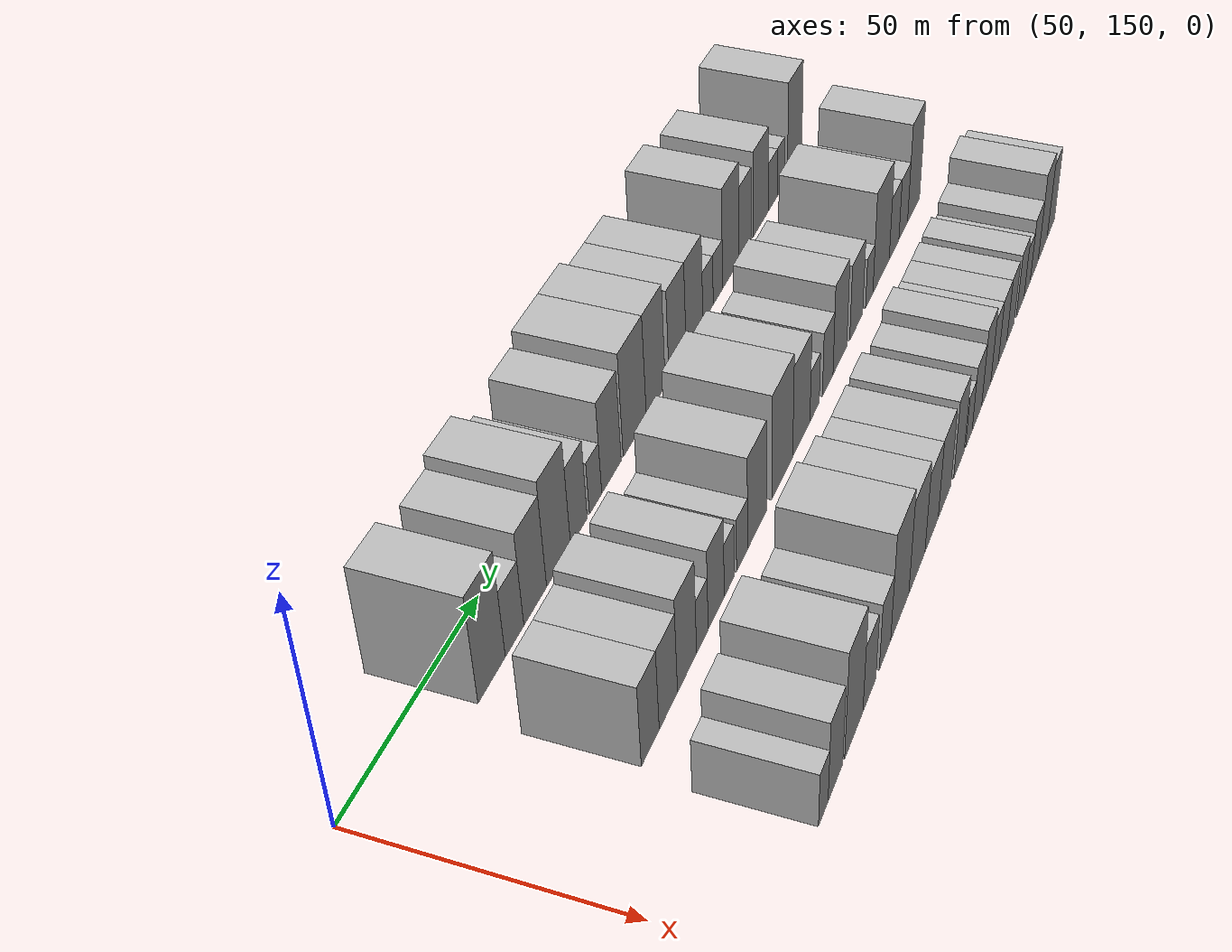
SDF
<sdf version="1.6">
 <world name="default">
  <model name="building_59">
   <static>1</static>
   <pose>50.0000 183.8824 0 0.000000 0.000000 0.000000</pose>
   <link name="link">
    <pose>0 0 12.00 0 0 0</pose>
    <collision name="collision"><geometry><box><size>20.0000 10.3630 24.0000</size></box></geometry></collision>
    <visual name="visual">
     <cast_shadows>0</cast_shadows>
     <geometry><box><size>20.0000 10.3630 24.0000</size></box></geometry>
     <material>
      <script>
       <uri>model://HANNAS_wall/materials/scripts</uri>
       <uri>model://HANNAS_wall/materials/textures</uri>
       <name>vrc/HANNAS_wall</name>
      </script>
     </material>
    </visual>
   </link>
  </model>
  <model name="building_60">
   <static>1</static>
   <pose>50.0000 192.7073 0 0.000000 0.000000 0.000000</pose>
   <link name="link">
    <pose>0 0 7.50 0 0 0</pose>
    <collision name="collision"><geometry><box><size>20.0000 7.2868 15.0000</size></box></geometry></collision>
    <visual name="visual">
     <cast_shadows>0</cast_shadows>
     <geometry><box><size>20.0000 7.2868 15.0000</size></box></geometry>
     <material>
      <script>
       <uri>model://HANNAS_wall/materials/scripts</uri>
       <uri>model://HANNAS_wall/materials/textures</uri>
       <name>vrc/HANNAS_wall</name>
      </script>
     </material>
    </visual>
   </link>
  </model>
  <model name="building_61">
   <static>1</static>
   <pose>50.0000 200.9932 0 0.000000 0.000000 0.000000</pose>
   <link name="link">
    <pose>0 0 10.50 0 0 0</pose>
    <collision name="collision"><geometry><box><size>20.0000 9.2849 21.0000</size></box></geometry></collision>
    <visual name="visual">
     <cast_shadows>0</cast_shadows>
     <geometry><box><size>20.0000 9.2849 21.0000</size></box></geometry>
     <material>
      <script>
       <uri>model://HANNAS_wall/materials/scripts</uri>
       <uri>model://HANNAS_wall/materials/textures</uri>
       <name>vrc/HANNAS_wall</name>
      </script>
     </material>
    </visual>
   </link>
  </model>
  <model name="building_62">
   <static>1</static>
   <pose>50.0000 210.7724 0 0.000000 0.000000 0.000000</pose>
   <link name="link">
    <pose>0 0 12.00 0 0 0</pose>
    <collision name="collision"><geometry><box><size>20.0000 10.2734 24.0000</size></box></geometry></collision>
    <visual name="visual">
     <cast_shadows>0</cast_shadows>
     <geometry><box><size>20.0000 10.2734 24.0000</size></box></geometry>
     <material>
      <script>
       <uri>model://HANNAS_wall/materials/scripts</uri>
       <uri>model://HANNAS_wall/materials/textures</uri>
       <name>vrc/HANNAS_wall</name>
      </script>
     </material>
    </visual>
   </link>
  </model>
  <model name="building_63">
   <static>1</static>
   <pose>50.0000 219.5845 0 0.000000 0.000000 0.000000</pose>
   <link name="link">
    <pose>0 0 9.00 0 0 0</pose>
    <collision name="collision"><geometry><box><size>20.0000 7.3509 18.0000</size></box></geometry></collision>
    <visual name="visual">
     <cast_shadows>0</cast_shadows>
     <geometry><box><size>20.0000 7.3509 18.0000</size></box></geometry>
     <material>
      <script>
       <uri>model://HANNAS_wall/materials/scripts</uri>
       <uri>model://HANNAS_wall/materials/textures</uri>
       <name>vrc/HANNAS_wall</name>
      </script>
     </material>
    </visual>
   </link>
  </model>
  <model name="building_64">
   <static>1</static>
   <pose>50.0000 227.0646 0 0.000000 0.000000 0.000000</pose>
   <link name="link">
    <pose>0 0 6.00 0 0 0</pose>
    <collision name="collision"><geometry><box><size>20.0000 5.6093 12.0000</size></box></geometry></collision>
    <visual name="visual">
     <cast_shadows>0</cast_shadows>
     <geometry><box><size>20.0000 5.6093 12.0000</size></box></geometry>
     <material>
      <script>
       <uri>model://HANNAS_wall/materials/scripts</uri>
       <uri>model://HANNAS_wall/materials/textures</uri>
       <name>vrc/HANNAS_wall</name>
      </script>
     </material>
    </visual>
   </link>
  </model>
  <model name="building_65">
   <static>1</static>
   <pose>50.0000 234.4562 0 0.000000 0.000000 0.000000</pose>
   <link name="link">
    <pose>0 0 10.50 0 0 0</pose>
    <collision name="collision"><geometry><box><size>20.0000 9.1740 21.0000</size></box></geometry></collision>
    <visual name="visual">
     <cast_shadows>0</cast_shadows>
     <geometry><box><size>20.0000 9.1740 21.0000</size></box></geometry>
     <material>
      <script>
       <uri>model://HANNAS_wall/materials/scripts</uri>
       <uri>model://HANNAS_wall/materials/textures</uri>
       <name>vrc/HANNAS_wall</name>
      </script>
     </material>
    </visual>
   </link>
  </model>
  <model name="building_66">
   <static>1</static>
   <pose>50.0000 245.7895 0 0.000000 0.000000 0.000000</pose>
   <link name="link">
    <pose>0 0 12.00 0 0 0</pose>
    <collision name="collision"><geometry><box><size>20.0000 11.4926 24.0000</size></box></geometry></collision>
    <visual name="visual">
     <cast_shadows>0</cast_shadows>
     <geometry><box><size>20.0000 11.4926 24.0000</size></box></geometry>
     <material>
      <script>
       <uri>model://HANNAS_wall/materials/scripts</uri>
       <uri>model://HANNAS_wall/materials/textures</uri>
       <name>vrc/HANNAS_wall</name>
      </script>
     </material>
    </visual>
   </link>
  </model>
  <model name="building_67">
   <static>1</static>
   <pose>50.0000 256.4288 0 0.000000 0.000000 0.000000</pose>
   <link name="link">
    <pose>0 0 12.00 0 0 0</pose>
    <collision name="collision"><geometry><box><size>20.0000 9.7861 24.0000</size></box></geometry></collision>
    <visual name="visual">
     <cast_shadows>0</cast_shadows>
     <geometry><box><size>20.0000 9.7861 24.0000</size></box></geometry>
     <material>
      <script>
       <uri>model://HANNAS_wall/materials/scripts</uri>
       <uri>model://HANNAS_wall/materials/textures</uri>
       <name>vrc/HANNAS_wall</name>
      </script>
     </material>
    </visual>
   </link>
  </model>
  <model name="building_68">
   <static>1</static>
   <pose>50.0000 267.9615 0 0.000000 0.000000 0.000000</pose>
   <link name="link">
    <pose>0 0 10.50 0 0 0</pose>
    <collision name="collision"><geometry><box><size>20.0000 9.2793 21.0000</size></box></geometry></collision>
    <visual name="visual">
     <cast_shadows>0</cast_shadows>
     <geometry><box><size>20.0000 9.2793 21.0000</size></box></geometry>
     <material>
      <script>
       <uri>model://HANNAS_wall/materials/scripts</uri>
       <uri>model://HANNAS_wall/materials/textures</uri>
       <name>vrc/HANNAS_wall</name>
      </script>
     </material>
    </visual>
   </link>
  </model>
  <model name="building_69">
   <static>1</static>
   <pose>50.0000 277.3104 0 0.000000 0.000000 0.000000</pose>
   <link name="link">
    <pose>0 0 10.50 0 0 0</pose>
    <collision name="collision"><geometry><box><size>20.0000 9.4185 21.0000</size></box></geometry></collision>
    <visual name="visual">
     <cast_shadows>0</cast_shadows>
     <geometry><box><size>20.0000 9.4185 21.0000</size></box></geometry>
     <material>
      <script>
       <uri>model://HANNAS_wall/materials/scripts</uri>
       <uri>model://HANNAS_wall/materials/textures</uri>
       <name>vrc/HANNAS_wall</name>
      </script>
     </material>
    </visual>
   </link>
  </model>
  <model name="building_70">
   <static>1</static>
   <pose>50.0000 285.0077 0 0.000000 0.000000 0.000000</pose>
   <link name="link">
    <pose>0 0 6.00 0 0 0</pose>
    <collision name="collision"><geometry><box><size>20.0000 5.9760 12.0000</size></box></geometry></collision>
    <visual name="visual">
     <cast_shadows>0</cast_shadows>
     <geometry><box><size>20.0000 5.9760 12.0000</size></box></geometry>
     <material>
      <script>
       <uri>model://HANNAS_wall/materials/scripts</uri>
       <uri>model://HANNAS_wall/materials/textures</uri>
       <name>vrc/HANNAS_wall</name>
      </script>
     </material>
    </visual>
   </link>
  </model>
  <model name="building_71">
   <static>1</static>
   <pose>50.0000 290.7769 0 0.000000 0.000000 0.000000</pose>
   <link name="link">
    <pose>0 0 6.00 0 0 0</pose>
    <collision name="collision"><geometry><box><size>20.0000 5.5625 12.0000</size></box></geometry></collision>
    <visual name="visual">
     <cast_shadows>0</cast_shadows>
     <geometry><box><size>20.0000 5.5625 12.0000</size></box></geometry>
     <material>
      <script>
       <uri>model://HANNAS_wall/materials/scripts</uri>
       <uri>model://HANNAS_wall/materials/textures</uri>
       <name>vrc/HANNAS_wall</name>
      </script>
     </material>
    </visual>
   </link>
  </model>
  <model name="building_72">
   <static>1</static>
   <pose>50.0000 298.5541 0 0.000000 0.000000 0.000000</pose>
   <link name="link">
    <pose>0 0 12.00 0 0 0</pose>
    <collision name="collision"><geometry><box><size>20.0000 9.9918 24.0000</size></box></geometry></collision>
    <visual name="visual">
     <cast_shadows>0</cast_shadows>
     <geometry><box><size>20.0000 9.9918 24.0000</size></box></geometry>
     <material>
      <script>
       <uri>model://HANNAS_wall/materials/scripts</uri>
       <uri>model://HANNAS_wall/materials/textures</uri>
       <name>vrc/HANNAS_wall</name>
      </script>
     </material>
    </visual>
   </link>
  </model>
  <model name="building_73">
   <static>1</static>
   <pose>50.0000 307.4494 0 0.000000 0.000000 0.000000</pose>
   <link name="link">
    <pose>0 0 9.00 0 0 0</pose>
    <collision name="collision"><geometry><box><size>20.0000 7.7990 18.0000</size></box></geometry></collision>
    <visual name="visual">
     <cast_shadows>0</cast_shadows>
     <geometry><box><size>20.0000 7.7990 18.0000</size></box></geometry>
     <material>
      <script>
       <uri>model://HANNAS_wall/materials/scripts</uri>
       <uri>model://HANNAS_wall/materials/textures</uri>
       <name>vrc/HANNAS_wall</name>
      </script>
     </material>
    </visual>
   </link>
  </model>
  <model name="building_74">
   <static>1</static>
   <pose>50.0000 317.3789 0 0.000000 0.000000 0.000000</pose>
   <link name="link">
    <pose>0 0 10.50 0 0 0</pose>
    <collision name="collision"><geometry><box><size>20.0000 10.0600 21.0000</size></box></geometry></collision>
    <visual name="visual">
     <cast_shadows>0</cast_shadows>
     <geometry><box><size>20.0000 10.0600 21.0000</size></box></geometry>
     <material>
      <script>
       <uri>model://HANNAS_wall/materials/scripts</uri>
       <uri>model://HANNAS_wall/materials/textures</uri>
       <name>vrc/HANNAS_wall</name>
      </script>
     </material>
    </visual>
   </link>
  </model>
  <model name="building_75">
   <static>1</static>
   <pose>50.0000 325.3806 0 0.000000 0.000000 0.000000</pose>
   <link name="link">
    <pose>0 0 6.00 0 0 0</pose>
    <collision name="collision"><geometry><box><size>20.0000 5.9433 12.0000</size></box></geometry></collision>
    <visual name="visual">
     <cast_shadows>0</cast_shadows>
     <geometry><box><size>20.0000 5.9433 12.0000</size></box></geometry>
     <material>
      <script>
       <uri>model://HANNAS_wall/materials/scripts</uri>
       <uri>model://HANNAS_wall/materials/textures</uri>
       <name>vrc/HANNAS_wall</name>
      </script>
     </material>
    </visual>
   </link>
  </model>
  <model name="building_76">
   <static>1</static>
   <pose>50.0000 330.7910 0 0.000000 0.000000 0.000000</pose>
   <link name="link">
    <pose>0 0 6.00 0 0 0</pose>
    <collision name="collision"><geometry><box><size>20.0000 4.8773 12.0000</size></box></geometry></collision>
    <visual name="visual">
     <cast_shadows>0</cast_shadows>
     <geometry><box><size>20.0000 4.8773 12.0000</size></box></geometry>
     <material>
      <script>
       <uri>model://HANNAS_wall/materials/scripts</uri>
       <uri>model://HANNAS_wall/materials/textures</uri>
       <name>vrc/HANNAS_wall</name>
      </script>
     </material>
    </visual>
   </link>
  </model>
  <model name="building_77">
   <static>1</static>
   <pose>50.0000 340.2651 0 0.000000 0.000000 0.000000</pose>
   <link name="link">
    <pose>0 0 12.00 0 0 0</pose>
    <collision name="collision"><geometry><box><size>20.0000 10.0709 24.0000</size></box></geometry></collision>
    <visual name="visual">
     <cast_shadows>0</cast_shadows>
     <geometry><box><size>20.0000 10.0709 24.0000</size></box></geometry>
     <material>
      <script>
       <uri>model://HANNAS_wall/materials/scripts</uri>
       <uri>model://HANNAS_wall/materials/textures</uri>
       <name>vrc/HANNAS_wall</name>
      </script>
     </material>
    </visual>
   </link>
  </model>
  <model name="building_135">
   <static>1</static>
   <pose>79.0000 179.2080 0 0.000000 0.000000 0.000000</pose>
   <link name="link">
    <pose>0 0 9.00 0 0 0</pose>
    <collision name="collision"><geometry><box><size>20.0000 7.6294 18.0000</size></box></geometry></collision>
    <visual name="visual">
     <cast_shadows>0</cast_shadows>
     <geometry><box><size>20.0000 7.6294 18.0000</size></box></geometry>
     <material>
      <script>
       <uri>model://HANNAS_wall/materials/scripts</uri>
       <uri>model://HANNAS_wall/materials/textures</uri>
       <name>vrc/HANNAS_wall</name>
      </script>
     </material>
    </visual>
   </link>
  </model>
  <model name="building_136">
   <static>1</static>
   <pose>79.0000 187.0425 0 0.000000 0.000000 0.000000</pose>
   <link name="link">
    <pose>0 0 9.00 0 0 0</pose>
    <collision name="collision"><geometry><box><size>20.0000 8.0396 18.0000</size></box></geometry></collision>
    <visual name="visual">
     <cast_shadows>0</cast_shadows>
     <geometry><box><size>20.0000 8.0396 18.0000</size></box></geometry>
     <material>
      <script>
       <uri>model://HANNAS_wall/materials/scripts</uri>
       <uri>model://HANNAS_wall/materials/textures</uri>
       <name>vrc/HANNAS_wall</name>
      </script>
     </material>
    </visual>
   </link>
  </model>
  <model name="building_137">
   <static>1</static>
   <pose>79.0000 195.4418 0 0.000000 0.000000 0.000000</pose>
   <link name="link">
    <pose>0 0 10.50 0 0 0</pose>
    <collision name="collision"><geometry><box><size>20.0000 8.7592 21.0000</size></box></geometry></collision>
    <visual name="visual">
     <cast_shadows>0</cast_shadows>
     <geometry><box><size>20.0000 8.7592 21.0000</size></box></geometry>
     <material>
      <script>
       <uri>model://HANNAS_wall/materials/scripts</uri>
       <uri>model://HANNAS_wall/materials/textures</uri>
       <name>vrc/HANNAS_wall</name>
      </script>
     </material>
    </visual>
   </link>
  </model>
  <model name="building_138">
   <static>1</static>
   <pose>79.0000 202.5746 0 0.000000 0.000000 0.000000</pose>
   <link name="link">
    <pose>0 0 6.00 0 0 0</pose>
    <collision name="collision"><geometry><box><size>20.0000 5.5064 12.0000</size></box></geometry></collision>
    <visual name="visual">
     <cast_shadows>0</cast_shadows>
     <geometry><box><size>20.0000 5.5064 12.0000</size></box></geometry>
     <material>
      <script>
       <uri>model://HANNAS_wall/materials/scripts</uri>
       <uri>model://HANNAS_wall/materials/textures</uri>
       <name>vrc/HANNAS_wall</name>
      </script>
     </material>
    </visual>
   </link>
  </model>
  <model name="building_139">
   <static>1</static>
   <pose>79.0000 209.2580 0 0.000000 0.000000 0.000000</pose>
   <link name="link">
    <pose>0 0 9.00 0 0 0</pose>
    <collision name="collision"><geometry><box><size>20.0000 7.8603 18.0000</size></box></geometry></collision>
    <visual name="visual">
     <cast_shadows>0</cast_shadows>
     <geometry><box><size>20.0000 7.8603 18.0000</size></box></geometry>
     <material>
      <script>
       <uri>model://HANNAS_wall/materials/scripts</uri>
       <uri>model://HANNAS_wall/materials/textures</uri>
       <name>vrc/HANNAS_wall</name>
      </script>
     </material>
    </visual>
   </link>
  </model>
  <model name="building_140">
   <static>1</static>
   <pose>79.0000 215.7795 0 0.000000 0.000000 0.000000</pose>
   <link name="link">
    <pose>0 0 6.00 0 0 0</pose>
    <collision name="collision"><geometry><box><size>20.0000 5.1828 12.0000</size></box></geometry></collision>
    <visual name="visual">
     <cast_shadows>0</cast_shadows>
     <geometry><box><size>20.0000 5.1828 12.0000</size></box></geometry>
     <material>
      <script>
       <uri>model://HANNAS_wall/materials/scripts</uri>
       <uri>model://HANNAS_wall/materials/textures</uri>
       <name>vrc/HANNAS_wall</name>
      </script>
     </material>
    </visual>
   </link>
  </model>
  <model name="building_141">
   <static>1</static>
   <pose>79.0000 222.2159 0 0.000000 0.000000 0.000000</pose>
   <link name="link">
    <pose>0 0 6.00 0 0 0</pose>
    <collision name="collision"><geometry><box><size>20.0000 5.6900 12.0000</size></box></geometry></collision>
    <visual name="visual">
     <cast_shadows>0</cast_shadows>
     <geometry><box><size>20.0000 5.6900 12.0000</size></box></geometry>
     <material>
      <script>
       <uri>model://HANNAS_wall/materials/scripts</uri>
       <uri>model://HANNAS_wall/materials/textures</uri>
       <name>vrc/HANNAS_wall</name>
      </script>
     </material>
    </visual>
   </link>
  </model>
  <model name="building_142">
   <static>1</static>
   <pose>79.0000 230.1101 0 0.000000 0.000000 0.000000</pose>
   <link name="link">
    <pose>0 0 10.50 0 0 0</pose>
    <collision name="collision"><geometry><box><size>20.0000 10.0984 21.0000</size></box></geometry></collision>
    <visual name="visual">
     <cast_shadows>0</cast_shadows>
     <geometry><box><size>20.0000 10.0984 21.0000</size></box></geometry>
     <material>
      <script>
       <uri>model://HANNAS_wall/materials/scripts</uri>
       <uri>model://HANNAS_wall/materials/textures</uri>
       <name>vrc/HANNAS_wall</name>
      </script>
     </material>
    </visual>
   </link>
  </model>
  <model name="building_143">
   <static>1</static>
   <pose>79.0000 244.1056 0 0.000000 0.000000 0.000000</pose>
   <link name="link">
    <pose>0 0 12.00 0 0 0</pose>
    <collision name="collision"><geometry><box><size>20.0000 11.8927 24.0000</size></box></geometry></collision>
    <visual name="visual">
     <cast_shadows>0</cast_shadows>
     <geometry><box><size>20.0000 11.8927 24.0000</size></box></geometry>
     <material>
      <script>
       <uri>model://HANNAS_wall/materials/scripts</uri>
       <uri>model://HANNAS_wall/materials/textures</uri>
       <name>vrc/HANNAS_wall</name>
      </script>
     </material>
    </visual>
   </link>
  </model>
  <model name="building_144">
   <static>1</static>
   <pose>79.0000 255.1747 0 0.000000 0.000000 0.000000</pose>
   <link name="link">
    <pose>0 0 10.50 0 0 0</pose>
    <collision name="collision"><geometry><box><size>20.0000 10.2454 21.0000</size></box></geometry></collision>
    <visual name="visual">
     <cast_shadows>0</cast_shadows>
     <geometry><box><size>20.0000 10.2454 21.0000</size></box></geometry>
     <material>
      <script>
       <uri>model://HANNAS_wall/materials/scripts</uri>
       <uri>model://HANNAS_wall/materials/textures</uri>
       <name>vrc/HANNAS_wall</name>
      </script>
     </material>
    </visual>
   </link>
  </model>
  <model name="building_145">
   <static>1</static>
   <pose>79.0000 263.1649 0 0.000000 0.000000 0.000000</pose>
   <link name="link">
    <pose>0 0 6.00 0 0 0</pose>
    <collision name="collision"><geometry><box><size>20.0000 5.7350 12.0000</size></box></geometry></collision>
    <visual name="visual">
     <cast_shadows>0</cast_shadows>
     <geometry><box><size>20.0000 5.7350 12.0000</size></box></geometry>
     <material>
      <script>
       <uri>model://HANNAS_wall/materials/scripts</uri>
       <uri>model://HANNAS_wall/materials/textures</uri>
       <name>vrc/HANNAS_wall</name>
      </script>
     </material>
    </visual>
   </link>
  </model>
  <model name="building_146">
   <static>1</static>
   <pose>79.0000 271.3959 0 0.000000 0.000000 0.000000</pose>
   <link name="link">
    <pose>0 0 7.50 0 0 0</pose>
    <collision name="collision"><geometry><box><size>20.0000 6.7271 15.0000</size></box></geometry></collision>
    <visual name="visual">
     <cast_shadows>0</cast_shadows>
     <geometry><box><size>20.0000 6.7271 15.0000</size></box></geometry>
     <material>
      <script>
       <uri>model://HANNAS_wall/materials/scripts</uri>
       <uri>model://HANNAS_wall/materials/textures</uri>
       <name>vrc/HANNAS_wall</name>
      </script>
     </material>
    </visual>
   </link>
  </model>
  <model name="building_147">
   <static>1</static>
   <pose>79.0000 279.2675 0 0.000000 0.000000 0.000000</pose>
   <link name="link">
    <pose>0 0 10.50 0 0 0</pose>
    <collision name="collision"><geometry><box><size>20.0000 9.0162 21.0000</size></box></geometry></collision>
    <visual name="visual">
     <cast_shadows>0</cast_shadows>
     <geometry><box><size>20.0000 9.0162 21.0000</size></box></geometry>
     <material>
      <script>
       <uri>model://HANNAS_wall/materials/scripts</uri>
       <uri>model://HANNAS_wall/materials/textures</uri>
       <name>vrc/HANNAS_wall</name>
      </script>
     </material>
    </visual>
   </link>
  </model>
  <model name="building_148">
   <static>1</static>
   <pose>79.0000 290.2084 0 0.000000 0.000000 0.000000</pose>
   <link name="link">
    <pose>0 0 9.00 0 0 0</pose>
    <collision name="collision"><geometry><box><size>20.0000 8.8655 18.0000</size></box></geometry></collision>
    <visual name="visual">
     <cast_shadows>0</cast_shadows>
     <geometry><box><size>20.0000 8.8655 18.0000</size></box></geometry>
     <material>
      <script>
       <uri>model://HANNAS_wall/materials/scripts</uri>
       <uri>model://HANNAS_wall/materials/textures</uri>
       <name>vrc/HANNAS_wall</name>
      </script>
     </material>
    </visual>
   </link>
  </model>
  <model name="building_149">
   <static>1</static>
   <pose>79.0000 299.2640 0 0.000000 0.000000 0.000000</pose>
   <link name="link">
    <pose>0 0 6.00 0 0 0</pose>
    <collision name="collision"><geometry><box><size>20.0000 5.2457 12.0000</size></box></geometry></collision>
    <visual name="visual">
     <cast_shadows>0</cast_shadows>
     <geometry><box><size>20.0000 5.2457 12.0000</size></box></geometry>
     <material>
      <script>
       <uri>model://HANNAS_wall/materials/scripts</uri>
       <uri>model://HANNAS_wall/materials/textures</uri>
       <name>vrc/HANNAS_wall</name>
      </script>
     </material>
    </visual>
   </link>
  </model>
  <model name="building_150">
   <static>1</static>
   <pose>79.0000 307.8583 0 0.000000 0.000000 0.000000</pose>
   <link name="link">
    <pose>0 0 12.00 0 0 0</pose>
    <collision name="collision"><geometry><box><size>20.0000 11.9430 24.0000</size></box></geometry></collision>
    <visual name="visual">
     <cast_shadows>0</cast_shadows>
     <geometry><box><size>20.0000 11.9430 24.0000</size></box></geometry>
     <material>
      <script>
       <uri>model://HANNAS_wall/materials/scripts</uri>
       <uri>model://HANNAS_wall/materials/textures</uri>
       <name>vrc/HANNAS_wall</name>
      </script>
     </material>
    </visual>
   </link>
  </model>
  <model name="building_151">
   <static>1</static>
   <pose>79.0000 317.4902 0 0.000000 0.000000 0.000000</pose>
   <link name="link">
    <pose>0 0 7.50 0 0 0</pose>
    <collision name="collision"><geometry><box><size>20.0000 7.3208 15.0000</size></box></geometry></collision>
    <visual name="visual">
     <cast_shadows>0</cast_shadows>
     <geometry><box><size>20.0000 7.3208 15.0000</size></box></geometry>
     <material>
      <script>
       <uri>model://HANNAS_wall/materials/scripts</uri>
       <uri>model://HANNAS_wall/materials/textures</uri>
       <name>vrc/HANNAS_wall</name>
      </script>
     </material>
    </visual>
   </link>
  </model>
  <model name="building_152">
   <static>1</static>
   <pose>79.0000 324.5305 0 0.000000 0.000000 0.000000</pose>
   <link name="link">
    <pose>0 0 7.50 0 0 0</pose>
    <collision name="collision"><geometry><box><size>20.0000 6.7599 15.0000</size></box></geometry></collision>
    <visual name="visual">
     <cast_shadows>0</cast_shadows>
     <geometry><box><size>20.0000 6.7599 15.0000</size></box></geometry>
     <material>
      <script>
       <uri>model://HANNAS_wall/materials/scripts</uri>
       <uri>model://HANNAS_wall/materials/textures</uri>
       <name>vrc/HANNAS_wall</name>
      </script>
     </material>
    </visual>
   </link>
  </model>
  <model name="building_153">
   <static>1</static>
   <pose>79.0000 332.7271 0 0.000000 0.000000 0.000000</pose>
   <link name="link">
    <pose>0 0 12.00 0 0 0</pose>
    <collision name="collision"><geometry><box><size>20.0000 9.6332 24.0000</size></box></geometry></collision>
    <visual name="visual">
     <cast_shadows>0</cast_shadows>
     <geometry><box><size>20.0000 9.6332 24.0000</size></box></geometry>
     <material>
      <script>
       <uri>model://HANNAS_wall/materials/scripts</uri>
       <uri>model://HANNAS_wall/materials/textures</uri>
       <name>vrc/HANNAS_wall</name>
      </script>
     </material>
    </visual>
   </link>
  </model>
  <model name="building_215">
   <static>1</static>
   <pose>108.0000 175.8339 0 0.000000 0.000000 0.000000</pose>
   <link name="link">
    <pose>0 0 6.00 0 0 0</pose>
    <collision name="collision"><geometry><box><size>20.0000 4.8078 12.0000</size></box></geometry></collision>
    <visual name="visual">
     <cast_shadows>0</cast_shadows>
     <geometry><box><size>20.0000 4.8078 12.0000</size></box></geometry>
     <material>
      <script>
       <uri>model://HANNAS_wall/materials/scripts</uri>
       <uri>model://HANNAS_wall/materials/textures</uri>
       <name>vrc/HANNAS_wall</name>
      </script>
     </material>
    </visual>
   </link>
  </model>
  <model name="building_216">
   <static>1</static>
   <pose>108.0000 182.0106 0 0.000000 0.000000 0.000000</pose>
   <link name="link">
    <pose>0 0 9.00 0 0 0</pose>
    <collision name="collision"><geometry><box><size>20.0000 7.5457 18.0000</size></box></geometry></collision>
    <visual name="visual">
     <cast_shadows>0</cast_shadows>
     <geometry><box><size>20.0000 7.5457 18.0000</size></box></geometry>
     <material>
      <script>
       <uri>model://HANNAS_wall/materials/scripts</uri>
       <uri>model://HANNAS_wall/materials/textures</uri>
       <name>vrc/HANNAS_wall</name>
      </script>
     </material>
    </visual>
   </link>
  </model>
  <model name="building_217">
   <static>1</static>
   <pose>108.0000 191.7437 0 0.000000 0.000000 0.000000</pose>
   <link name="link">
    <pose>0 0 12.00 0 0 0</pose>
    <collision name="collision"><geometry><box><size>20.0000 9.9205 24.0000</size></box></geometry></collision>
    <visual name="visual">
     <cast_shadows>0</cast_shadows>
     <geometry><box><size>20.0000 9.9205 24.0000</size></box></geometry>
     <material>
      <script>
       <uri>model://HANNAS_wall/materials/scripts</uri>
       <uri>model://HANNAS_wall/materials/textures</uri>
       <name>vrc/HANNAS_wall</name>
      </script>
     </material>
    </visual>
   </link>
  </model>
  <model name="building_218">
   <static>1</static>
   <pose>108.0000 200.3298 0 0.000000 0.000000 0.000000</pose>
   <link name="link">
    <pose>0 0 7.50 0 0 0</pose>
    <collision name="collision"><geometry><box><size>20.0000 7.2518 15.0000</size></box></geometry></collision>
    <visual name="visual">
     <cast_shadows>0</cast_shadows>
     <geometry><box><size>20.0000 7.2518 15.0000</size></box></geometry>
     <material>
      <script>
       <uri>model://HANNAS_wall/materials/scripts</uri>
       <uri>model://HANNAS_wall/materials/textures</uri>
       <name>vrc/HANNAS_wall</name>
      </script>
     </material>
    </visual>
   </link>
  </model>
  <model name="building_219">
   <static>1</static>
   <pose>108.0000 209.3053 0 0.000000 0.000000 0.000000</pose>
   <link name="link">
    <pose>0 0 7.50 0 0 0</pose>
    <collision name="collision"><geometry><box><size>20.0000 6.6991 15.0000</size></box></geometry></collision>
    <visual name="visual">
     <cast_shadows>0</cast_shadows>
     <geometry><box><size>20.0000 6.6991 15.0000</size></box></geometry>
     <material>
      <script>
       <uri>model://HANNAS_wall/materials/scripts</uri>
       <uri>model://HANNAS_wall/materials/textures</uri>
       <name>vrc/HANNAS_wall</name>
      </script>
     </material>
    </visual>
   </link>
  </model>
  <model name="building_220">
   <static>1</static>
   <pose>108.0000 218.2156 0 0.000000 0.000000 0.000000</pose>
   <link name="link">
    <pose>0 0 12.00 0 0 0</pose>
    <collision name="collision"><geometry><box><size>20.0000 11.1215 24.0000</size></box></geometry></collision>
    <visual name="visual">
     <cast_shadows>0</cast_shadows>
     <geometry><box><size>20.0000 11.1215 24.0000</size></box></geometry>
     <material>
      <script>
       <uri>model://HANNAS_wall/materials/scripts</uri>
       <uri>model://HANNAS_wall/materials/textures</uri>
       <name>vrc/HANNAS_wall</name>
      </script>
     </material>
    </visual>
   </link>
  </model>
  <model name="building_221">
   <static>1</static>
   <pose>108.0000 228.9795 0 0.000000 0.000000 0.000000</pose>
   <link name="link">
    <pose>0 0 10.50 0 0 0</pose>
    <collision name="collision"><geometry><box><size>20.0000 10.4064 21.0000</size></box></geometry></collision>
    <visual name="visual">
     <cast_shadows>0</cast_shadows>
     <geometry><box><size>20.0000 10.4064 21.0000</size></box></geometry>
     <material>
      <script>
       <uri>model://HANNAS_wall/materials/scripts</uri>
       <uri>model://HANNAS_wall/materials/textures</uri>
       <name>vrc/HANNAS_wall</name>
      </script>
     </material>
    </visual>
   </link>
  </model>
  <model name="building_222">
   <static>1</static>
   <pose>108.0000 238.6101 0 0.000000 0.000000 0.000000</pose>
   <link name="link">
    <pose>0 0 9.00 0 0 0</pose>
    <collision name="collision"><geometry><box><size>20.0000 8.8546 18.0000</size></box></geometry></collision>
    <visual name="visual">
     <cast_shadows>0</cast_shadows>
     <geometry><box><size>20.0000 8.8546 18.0000</size></box></geometry>
     <material>
      <script>
       <uri>model://HANNAS_wall/materials/scripts</uri>
       <uri>model://HANNAS_wall/materials/textures</uri>
       <name>vrc/HANNAS_wall</name>
      </script>
     </material>
    </visual>
   </link>
  </model>
  <model name="building_223">
   <static>1</static>
   <pose>108.0000 247.4563 0 0.000000 0.000000 0.000000</pose>
   <link name="link">
    <pose>0 0 9.00 0 0 0</pose>
    <collision name="collision"><geometry><box><size>20.0000 8.8378 18.0000</size></box></geometry></collision>
    <visual name="visual">
     <cast_shadows>0</cast_shadows>
     <geometry><box><size>20.0000 8.8378 18.0000</size></box></geometry>
     <material>
      <script>
       <uri>model://HANNAS_wall/materials/scripts</uri>
       <uri>model://HANNAS_wall/materials/textures</uri>
       <name>vrc/HANNAS_wall</name>
      </script>
     </material>
    </visual>
   </link>
  </model>
  <model name="building_224">
   <static>1</static>
   <pose>108.0000 257.6757 0 0.000000 0.000000 0.000000</pose>
   <link name="link">
    <pose>0 0 9.00 0 0 0</pose>
    <collision name="collision"><geometry><box><size>20.0000 7.6011 18.0000</size></box></geometry></collision>
    <visual name="visual">
     <cast_shadows>0</cast_shadows>
     <geometry><box><size>20.0000 7.6011 18.0000</size></box></geometry>
     <material>
      <script>
       <uri>model://HANNAS_wall/materials/scripts</uri>
       <uri>model://HANNAS_wall/materials/textures</uri>
       <name>vrc/HANNAS_wall</name>
      </script>
     </material>
    </visual>
   </link>
  </model>
  <model name="building_225">
   <static>1</static>
   <pose>108.0000 264.9707 0 0.000000 0.000000 0.000000</pose>
   <link name="link">
    <pose>0 0 6.00 0 0 0</pose>
    <collision name="collision"><geometry><box><size>20.0000 4.9889 12.0000</size></box></geometry></collision>
    <visual name="visual">
     <cast_shadows>0</cast_shadows>
     <geometry><box><size>20.0000 4.9889 12.0000</size></box></geometry>
     <material>
      <script>
       <uri>model://HANNAS_wall/materials/scripts</uri>
       <uri>model://HANNAS_wall/materials/textures</uri>
       <name>vrc/HANNAS_wall</name>
      </script>
     </material>
    </visual>
   </link>
  </model>
  <model name="building_226">
   <static>1</static>
   <pose>108.0000 271.1001 0 0.000000 0.000000 0.000000</pose>
   <link name="link">
    <pose>0 0 7.50 0 0 0</pose>
    <collision name="collision"><geometry><box><size>20.0000 7.2700 15.0000</size></box></geometry></collision>
    <visual name="visual">
     <cast_shadows>0</cast_shadows>
     <geometry><box><size>20.0000 7.2700 15.0000</size></box></geometry>
     <material>
      <script>
       <uri>model://HANNAS_wall/materials/scripts</uri>
       <uri>model://HANNAS_wall/materials/textures</uri>
       <name>vrc/HANNAS_wall</name>
      </script>
     </material>
    </visual>
   </link>
  </model>
  <model name="building_227">
   <static>1</static>
   <pose>108.0000 278.3805 0 0.000000 0.000000 0.000000</pose>
   <link name="link">
    <pose>0 0 9.00 0 0 0</pose>
    <collision name="collision"><geometry><box><size>20.0000 7.2907 18.0000</size></box></geometry></collision>
    <visual name="visual">
     <cast_shadows>0</cast_shadows>
     <geometry><box><size>20.0000 7.2907 18.0000</size></box></geometry>
     <material>
      <script>
       <uri>model://HANNAS_wall/materials/scripts</uri>
       <uri>model://HANNAS_wall/materials/textures</uri>
       <name>vrc/HANNAS_wall</name>
      </script>
     </material>
    </visual>
   </link>
  </model>
  <model name="building_228">
   <static>1</static>
   <pose>108.0000 285.0707 0 0.000000 0.000000 0.000000</pose>
   <link name="link">
    <pose>0 0 7.50 0 0 0</pose>
    <collision name="collision"><geometry><box><size>20.0000 6.0897 15.0000</size></box></geometry></collision>
    <visual name="visual">
     <cast_shadows>0</cast_shadows>
     <geometry><box><size>20.0000 6.0897 15.0000</size></box></geometry>
     <material>
      <script>
       <uri>model://HANNAS_wall/materials/scripts</uri>
       <uri>model://HANNAS_wall/materials/textures</uri>
       <name>vrc/HANNAS_wall</name>
      </script>
     </material>
    </visual>
   </link>
  </model>
  <model name="building_229">
   <static>1</static>
   <pose>108.0000 291.6622 0 0.000000 0.000000 0.000000</pose>
   <link name="link">
    <pose>0 0 7.50 0 0 0</pose>
    <collision name="collision"><geometry><box><size>20.0000 7.0933 15.0000</size></box></geometry></collision>
    <visual name="visual">
     <cast_shadows>0</cast_shadows>
     <geometry><box><size>20.0000 7.0933 15.0000</size></box></geometry>
     <material>
      <script>
       <uri>model://HANNAS_wall/materials/scripts</uri>
       <uri>model://HANNAS_wall/materials/textures</uri>
       <name>vrc/HANNAS_wall</name>
      </script>
     </material>
    </visual>
   </link>
  </model>
  <model name="building_230">
   <static>1</static>
   <pose>108.0000 298.3383 0 0.000000 0.000000 0.000000</pose>
   <link name="link">
    <pose>0 0 7.50 0 0 0</pose>
    <collision name="collision"><geometry><box><size>20.0000 6.2589 15.0000</size></box></geometry></collision>
    <visual name="visual">
     <cast_shadows>0</cast_shadows>
     <geometry><box><size>20.0000 6.2589 15.0000</size></box></geometry>
     <material>
      <script>
       <uri>model://HANNAS_wall/materials/scripts</uri>
       <uri>model://HANNAS_wall/materials/textures</uri>
       <name>vrc/HANNAS_wall</name>
      </script>
     </material>
    </visual>
   </link>
  </model>
  <model name="building_231">
   <static>1</static>
   <pose>108.0000 306.8864 0 0.000000 0.000000 0.000000</pose>
   <link name="link">
    <pose>0 0 7.50 0 0 0</pose>
    <collision name="collision"><geometry><box><size>20.0000 6.8372 15.0000</size></box></geometry></collision>
    <visual name="visual">
     <cast_shadows>0</cast_shadows>
     <geometry><box><size>20.0000 6.8372 15.0000</size></box></geometry>
     <material>
      <script>
       <uri>model://HANNAS_wall/materials/scripts</uri>
       <uri>model://HANNAS_wall/materials/textures</uri>
       <name>vrc/HANNAS_wall</name>
      </script>
     </material>
    </visual>
   </link>
  </model>
  <model name="building_232">
   <static>1</static>
   <pose>108.0000 313.0705 0 0.000000 0.000000 0.000000</pose>
   <link name="link">
    <pose>0 0 6.00 0 0 0</pose>
    <collision name="collision"><geometry><box><size>20.0000 5.5311 12.0000</size></box></geometry></collision>
    <visual name="visual">
     <cast_shadows>0</cast_shadows>
     <geometry><box><size>20.0000 5.5311 12.0000</size></box></geometry>
     <material>
      <script>
       <uri>model://HANNAS_wall/materials/scripts</uri>
       <uri>model://HANNAS_wall/materials/textures</uri>
       <name>vrc/HANNAS_wall</name>
      </script>
     </material>
    </visual>
   </link>
  </model>
  <model name="building_233">
   <static>1</static>
   <pose>108.0000 319.5391 0 0.000000 0.000000 0.000000</pose>
   <link name="link">
    <pose>0 0 7.50 0 0 0</pose>
    <collision name="collision"><geometry><box><size>20.0000 7.4061 15.0000</size></box></geometry></collision>
    <visual name="visual">
     <cast_shadows>0</cast_shadows>
     <geometry><box><size>20.0000 7.4061 15.0000</size></box></geometry>
     <material>
      <script>
       <uri>model://HANNAS_wall/materials/scripts</uri>
       <uri>model://HANNAS_wall/materials/textures</uri>
       <name>vrc/HANNAS_wall</name>
      </script>
     </material>
    </visual>
   </link>
  </model>
  <model name="building_234">
   <static>1</static>
   <pose>108.0000 327.5272 0 0.000000 0.000000 0.000000</pose>
   <link name="link">
    <pose>0 0 10.50 0 0 0</pose>
    <collision name="collision"><geometry><box><size>20.0000 8.5701 21.0000</size></box></geometry></collision>
    <visual name="visual">
     <cast_shadows>0</cast_shadows>
     <geometry><box><size>20.0000 8.5701 21.0000</size></box></geometry>
     <material>
      <script>
       <uri>model://HANNAS_wall/materials/scripts</uri>
       <uri>model://HANNAS_wall/materials/textures</uri>
       <name>vrc/HANNAS_wall</name>
      </script>
     </material>
    </visual>
   </link>
  </model>
  <model name="building_235">
   <static>1</static>
   <pose>108.0000 335.4341 0 0.000000 0.000000 0.000000</pose>
   <link name="link">
    <pose>0 0 9.00 0 0 0</pose>
    <collision name="collision"><geometry><box><size>20.0000 7.2437 18.0000</size></box></geometry></collision>
    <visual name="visual">
     <cast_shadows>0</cast_shadows>
     <geometry><box><size>20.0000 7.2437 18.0000</size></box></geometry>
     <material>
      <script>
       <uri>model://HANNAS_wall/materials/scripts</uri>
       <uri>model://HANNAS_wall/materials/textures</uri>
       <name>vrc/HANNAS_wall</name>
      </script>
     </material>
    </visual>
   </link>
  </model>
 </world>
</sdf>
